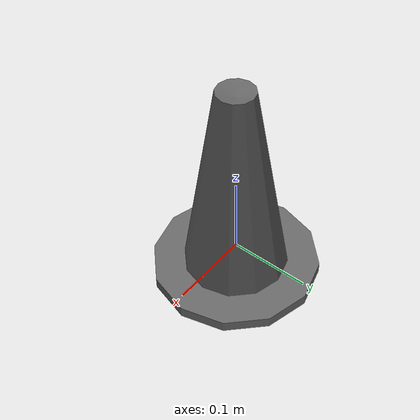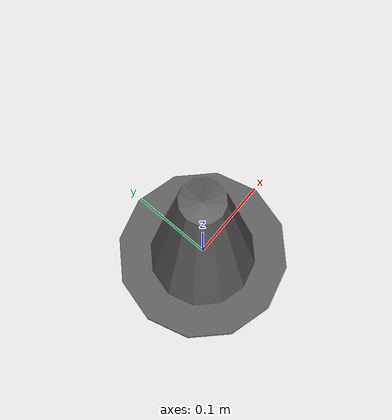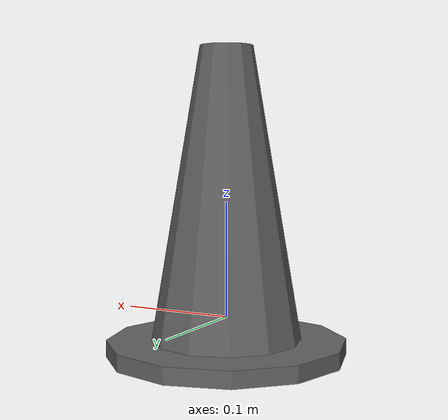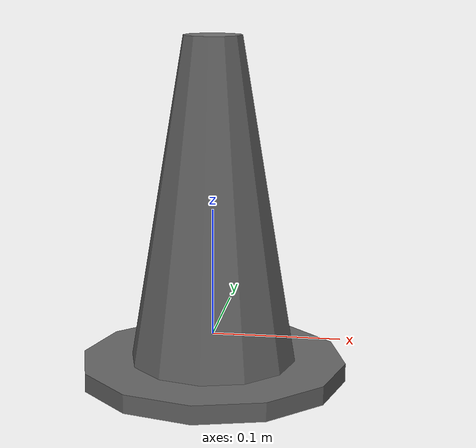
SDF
<?xml version='1.0'?>
<sdf version="1.5">
  <model name="pylon">
    <static>false</static>

    <link name="ball">
      <pose>0 0 0.1 1.5708 0 0</pose>

      <collision name="collision">
        <geometry>
            <mesh><uri>model://pylon/pylon.dae</uri></mesh>
        </geometry>
      </collision>

      <visual name="visual">
        <geometry>
            <mesh><uri>model://pylon/pylon.dae</uri></mesh>
        </geometry>
      </visual>

      <inertial>
        <mass>4.5</mass>
      </inertial>

    </link>
  </model>
</sdf>
